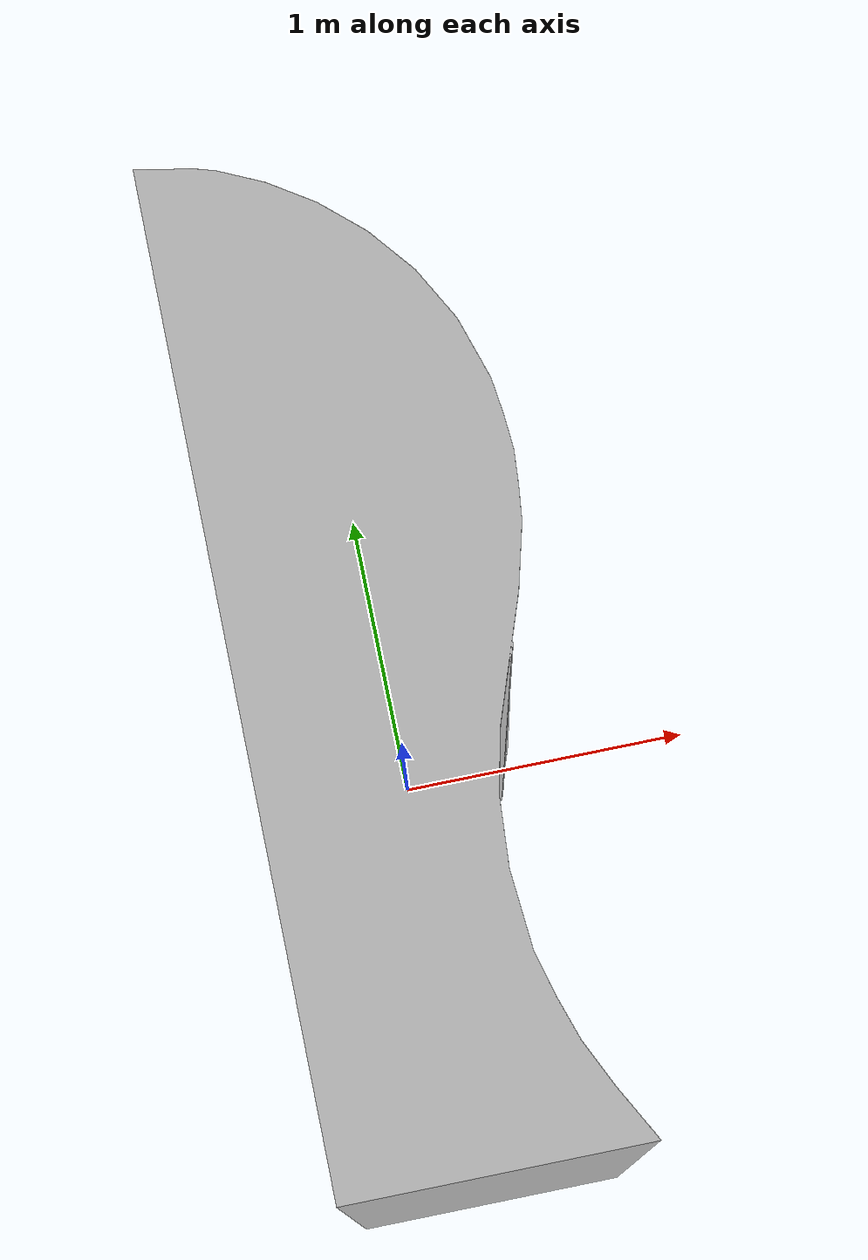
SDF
<?xml version='1.0'?>
<sdf version='1.4'>
  <model name='773'>
    <pose>0 0 0 0 0 0</pose>
    <static>true</static>
    <link name='link'>
      <collision name='collision'>
        <pose>0 0 0 0 0 0</pose>
        <geometry>
          <box>
            <size>0.9 2.99973 2</size>
          </box>
        </geometry>
      </collision>
      <visual name='visual'>
        <pose>0 0 0 0 0 0</pose>
        <geometry>
          <mesh><uri>model://773/773.dae</uri></mesh>
        </geometry>
      </visual>
    </link>
  </model>
</sdf>
